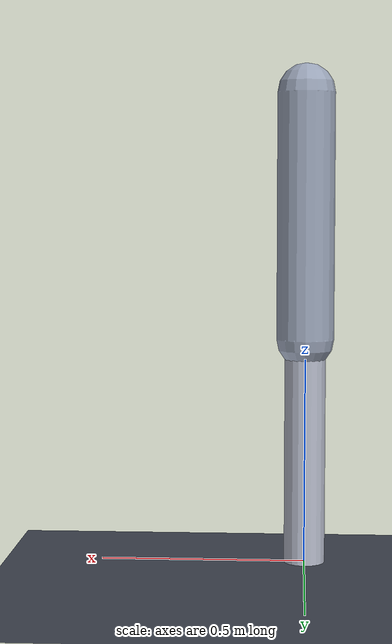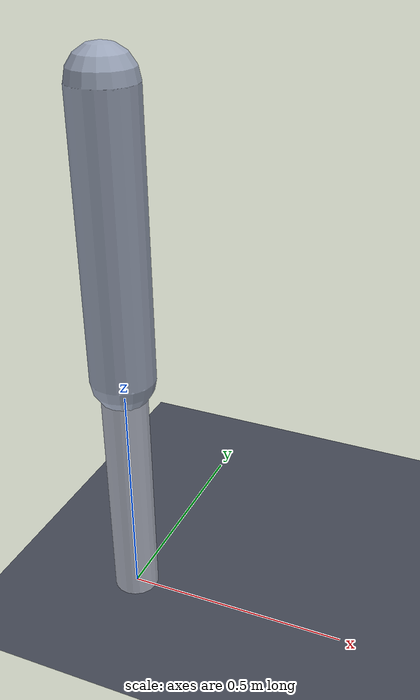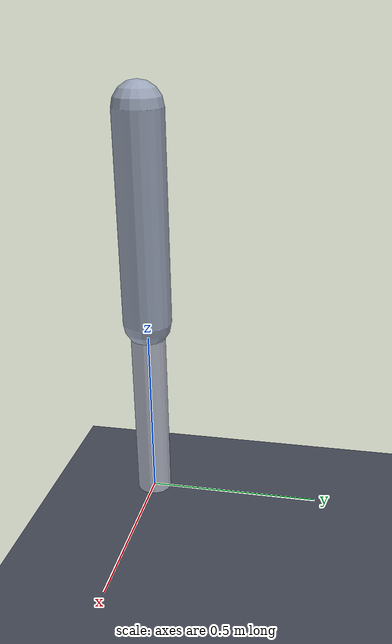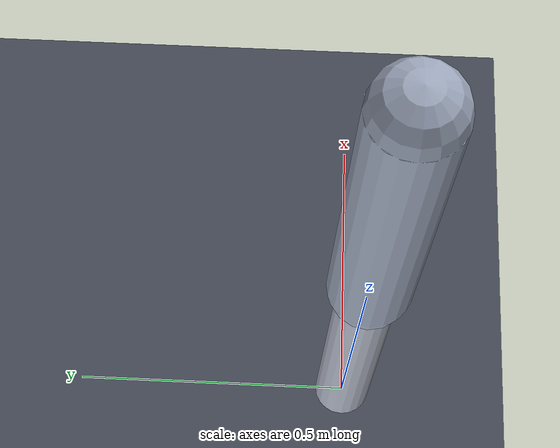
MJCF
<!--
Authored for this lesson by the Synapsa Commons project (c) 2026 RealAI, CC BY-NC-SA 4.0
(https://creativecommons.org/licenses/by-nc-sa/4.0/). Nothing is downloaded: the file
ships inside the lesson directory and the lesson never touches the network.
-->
<mujoco model="f15l08_balancer">
  <compiler angle="radian" autolimits="true"/>

  <option timestep="0.004" integrator="implicitfast" gravity="0 0 -9.81">
    <!-- Nothing in this task touches anything. A contact-free step is the cheapest honest
         unit of work for a study that needs thousands of rollouts. -->
    <flag contact="disable"/>
  </option>

  <visual>
    <rgba haze="0.15 0.25 0.35 1"/>
    <global elevation="-15" azimuth="90"/>
  </visual>

  <default>
    <geom type="capsule" contype="0" conaffinity="0" rgba="0.72 0.74 0.80 1"/>
    <joint type="hinge" axis="0 1 0" armature="0.01"/>
    <motor gear="1" ctrllimited="true"/>
  </default>

  <worldbody>
    <light pos="0 0 3" dir="0 0 -1" diffuse="0.8 0.8 0.8"/>
    <geom name="floor" type="plane" size="5 5 0.1" pos="0 0 0" rgba="0.26 0.28 0.33 1"
          contype="0" conaffinity="0"/>

    <body name="shank" pos="0 0 0">
      <joint name="ankle" damping="0.30" range="-1.4 1.4"/>
      <geom name="shank_geom" fromto="0 0 0 0 0 0.55" size="0.05" mass="6"/>

      <body name="torso" pos="0 0 0.55">
        <joint name="hip" damping="0.30" range="-1.0 1.0"/>
        <geom name="torso_geom" fromto="0 0 0 0 0 0.60" size="0.07" mass="14"
              rgba="0.62 0.66 0.74 1"/>
        <site name="head" pos="0 0 0.60" size="0.02"/>
      </body>
    </body>
  </worldbody>

  <actuator>
    <motor name="ankle_torque" joint="ankle" ctrlrange="-40 40"/>
    <motor name="hip_torque"   joint="hip"   ctrlrange="-25 25"/>
  </actuator>

  <keyframe>
    <key name="lean" qpos="0.15 -0.05" qvel="0.50 0.0"/>
  </keyframe>
</mujoco>
